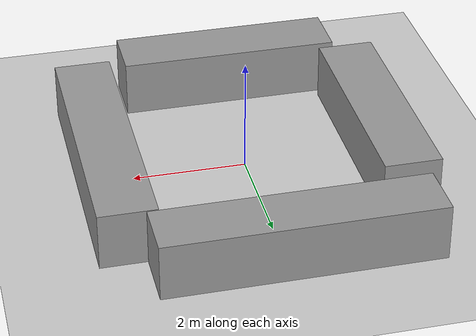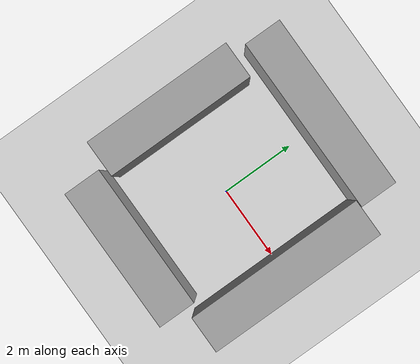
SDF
<sdf version="1.4">
 <world name="default">
  <scene><ambient>0.4 0.4 0.4 1</ambient><background>0.7 0.7 0.7 1</background><shadows>0</shadows></scene>
  <model name="ground_plane">
   <static>1</static>
   <link name="link">
    <collision name="collision">
     <geometry><plane><normal>0 0 1</normal><size>100 100</size></plane></geometry>
     <surface><friction><ode><mu>100</mu><mu2>50</mu2></ode></friction></surface>
    </collision>
    <visual name="visual">
     <cast_shadows>0</cast_shadows>
     <geometry><plane><normal>0 0 1</normal><size>100 100</size></plane></geometry>
     <material>
      <script><uri>file://media/materials/scripts/gazebo.material</uri><name>Gazebo/Grey</name></script>
     </material>
    </visual>
   </link>
  </model>
  <gravity>0 0 -9.8</gravity>
  <magnetic_field>6e-06 2.3e-05 -4.2e-05</magnetic_field>
  <atmosphere type="adiabatic"/>
  <physics name="default_physics" default="0" type="ode">
   <max_step_size>0.001</max_step_size>
   <real_time_factor>1</real_time_factor>
   <real_time_update_rate>1000</real_time_update_rate>
  </physics>
  <spherical_coordinates>
   <surface_model>EARTH_WGS84</surface_model>
   <latitude_deg>0</latitude_deg>
   <longitude_deg>0</longitude_deg>
   <elevation>0</elevation>
   <heading_deg>0</heading_deg>
  </spherical_coordinates>
  <model name="unit_box_0">
   <pose>-2.38234 0.031339 0.499998 -0 5e-06 3e-06</pose>
   <link name="link">
    <inertial>
     <mass>1</mass>
     <inertia>
      <ixx>0.166667</ixx>
      <ixy>0</ixy>
      <ixz>0</ixz>
      <iyy>0.166667</iyy>
      <iyz>0</iyz>
      <izz>0.166667</izz>
     </inertia>
    </inertial>
    <collision name="collision"><geometry><box><size>1 4.0685 1</size></box></geometry></collision>
    <visual name="visual">
     <geometry><box><size>1 4.0685 1</size></box></geometry>
     <material>
      <script><name>Gazebo/Grey</name><uri>file://media/materials/scripts/gazebo.material</uri></script>
     </material>
    </visual>
   </link>
  </model>
  <model name="unit_box_1">
   <pose>-0.232059 -2.65818 0.49934 -0 0.000339 1e-06</pose>
   <link name="link">
    <inertial>
     <mass>1</mass>
     <inertia>
      <ixx>0.166667</ixx>
      <ixy>0</ixy>
      <ixz>0</ixz>
      <iyy>0.166667</iyy>
      <iyz>0</iyz>
      <izz>0.166667</izz>
     </inertia>
    </inertial>
    <collision name="collision"><geometry><box><size>3.89862 1 1</size></box></geometry></collision>
    <visual name="visual">
     <geometry><box><size>3.89862 1 1</size></box></geometry>
     <material>
      <script><name>Gazebo/Grey</name><uri>file://media/materials/scripts/gazebo.material</uri></script>
     </material>
    </visual>
   </link>
  </model>
  <model name="unit_box_2">
   <pose>2.47955 -0.004439 0.498212 0.000743 -0 7e-06</pose>
   <link name="link">
    <inertial>
     <mass>1</mass>
     <inertia>
      <ixx>0.166667</ixx>
      <ixy>0</ixy>
      <ixz>0</ixz>
      <iyy>0.166667</iyy>
      <iyz>0</iyz>
      <izz>0.166667</izz>
     </inertia>
    </inertial>
    <collision name="collision"><geometry><box><size>1 4.81682 1</size></box></geometry></collision>
    <visual name="visual">
     <geometry><box><size>1 4.81682 1</size></box></geometry>
     <material>
      <script><name>Gazebo/Grey</name><uri>file://media/materials/scripts/gazebo.material</uri></script>
     </material>
    </visual>
   </link>
  </model>
  <model name="unit_box_3">
   <pose>-0.20214 2.91943 0.498298 0 0.000714 9e-06</pose>
   <link name="link">
    <inertial>
     <mass>1</mass>
     <inertia>
      <ixx>0.166667</ixx>
      <ixy>0</ixy>
      <ixz>0</ixz>
      <iyy>0.166667</iyy>
      <iyz>0</iyz>
      <izz>0.166667</izz>
     </inertia>
    </inertial>
    <collision name="collision"><geometry><box><size>4.7654 1 1</size></box></geometry></collision>
    <visual name="visual">
     <geometry><box><size>4.7654 1 1</size></box></geometry>
     <material>
      <script><name>Gazebo/Grey</name><uri>file://media/materials/scripts/gazebo.material</uri></script>
     </material>
    </visual>
   </link>
  </model>
 </world>
</sdf>
